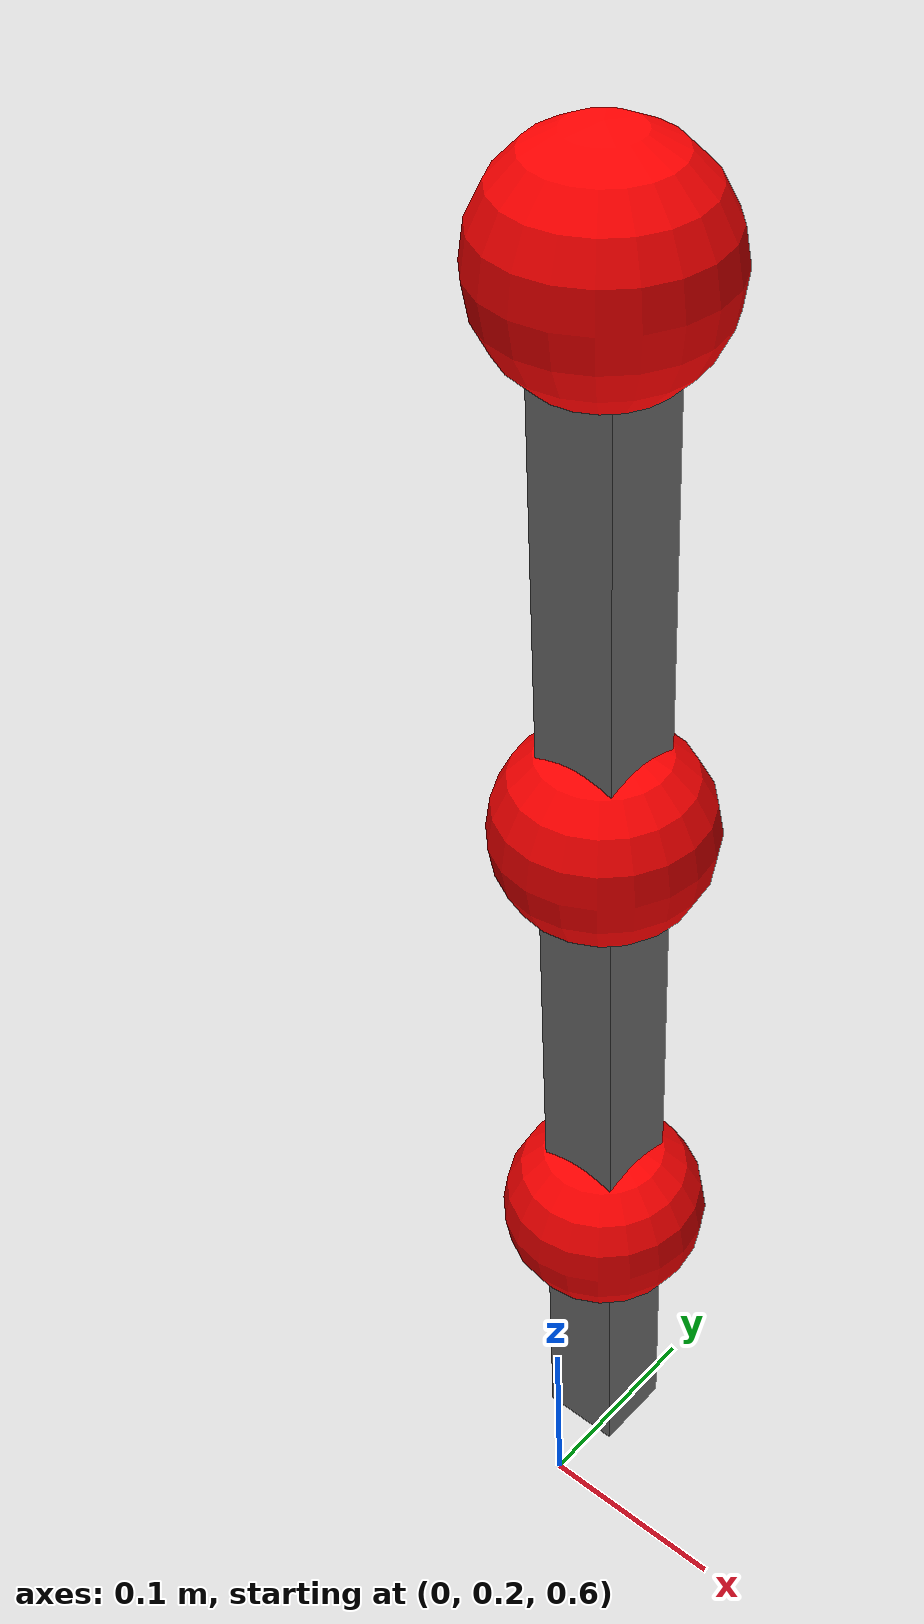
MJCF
<mujoco model="dummy arm scene">

  <include file="setting_option.xml"/>

  <statistic center="0 0 0.2" extent="0.6" />

  <visual>
    <headlight diffuse="0.6 0.6 0.6" ambient="0.3 0.3 0.3" specular="0 0 0" />
    <global azimuth="160" elevation="-20" />
    <rgba haze=".3 .3 .3 1" />
    <quality offsamples="0" />
  </visual>

  <asset>
    <texture type="skybox" builtin="gradient" rgb1="0.6 0.6 0.6" rgb2="0 0 0" width="512"
      height="512" />
    <texture type="2d" name="groundplane" builtin="checker" mark="edge" rgb1="0.2 0.3 0.4"
      rgb2="0.1 0.2 0.3"
      markrgb="0.8 0.8 0.8" width="300" height="300" />
    <material name="groundplane" texture="groundplane" texuniform="true" texrepeat="5 5"
      reflectance="0.2" />
  </asset>

  <worldbody>
    <geom name="floor" size="0 0 0.05" type="plane" material="groundplane" friction="0.5"/>
    <light directional="true" diffuse=".8 .8 .8" specular=".2 .2 .2" pos="0 0 5" dir="0 0 -1" />
    <body pos="0 0 1" euler="0 0 0">
      <include file="parts_mjcf/left_7dof_arm.xml"/>
    </body>
  </worldbody>
  <include file="physics.xml"/>
  <include file="actuator.xml" resolve_relative="root"/>
</mujoco>

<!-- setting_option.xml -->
<mujoco>
    <compiler coordinate="local" angle="radian" meshdir="meshes" strippath="false" />
    <option timestep="0.004" iterations="40" solver="Newton" tolerance="1e-10" />

    <default>
        <joint armature="0.6" frictionloss="0.03" />
    </default>
</mujoco>

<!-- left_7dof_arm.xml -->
<mujoco>
    <body name="left_shoulder_p" pos="0 0.238 0.291" euler="0 0 0">
        <joint pos="0 0 0" name="l_sh_p" type="hinge" axis="0 1 0" limited="true" range="-3.1415 3.1415" damping="7" />
        <inertial mass="6.2809923e-01" pos="7.8120036e-03 -2.0319564e-02  2.8569055e-05" fullinertia="0.0010 0.0013 0.00187 -0.000095 0.000000 0.0" />
        <geom type="sphere" size="0.05 0.05 0.1" contype="0" conaffinity="0" rgba="1 0 0 1"/>
        <body name="left_shoulder_r" pos="0 0 0" euler="0 0 0">
            <joint pos="0 0 0" name="l_sh_r" type="hinge" axis="1 0 0" limited="true" range="-3.1415 3.1415" damping="7" />
            <inertial mass="2.0754202e+00" pos="1.1721786e-04 -2.0673153e-06 -7.6467618e-02" fullinertia="0.0115 0.0117 0.00165 0.000000 -0.000052 -0.0" />
            <geom type="sphere" size="0.05 0.05 0.1" contype="0" conaffinity="0"  rgba="1 0 0 1"/>
            <body name="left_shoulder_y" pos="0 0 -0.1325" euler="0 0 0">
                <joint pos="0 0 0.1325" name="l_sh_y" type="hinge" axis="0 0 1" limited="true" range="-3.1415 3.1415" damping="7" />
                <inertial mass="8.3595948e-01" pos="1.5427073e-04  1.1853367e-03 -2.5928865e-01" fullinertia="0.0012 0.0013 0.00066 0.000000 -0.000001 0.0" />
                <geom type="box" size="0.02 0.02 0.1325" contype="0" conaffinity="0"/>
                <body name="left_el_p" pos="0 0 -0.245" euler="0 0 0">
                    <geom type="box" size="0.02 0.02 0.1225" contype="0" conaffinity="0"/>
                    <site name="l_el_p" size="0.05" pos="0 0 0.1225" rgba="1 0 0 1"/>
                    <inertial mass="9.2390633e-01" pos="-5.4273743e-05  5.2544852e-03 -5.6517244e-02" fullinertia="0.0036 0.0031 0.00101 -0.000003 0.000005 -0.0" />
                    <joint pos="0 0 0.1225" name="l_el_p" type="hinge" axis="0 1 0" limited="true" range="-3.1415 3.1415" damping="7" />
                    <body name="left_wr_y" pos="0 0 -0.1225" euler="0 0 0">
                        <joint pos="0 0 0" name="l_wr_y" type="hinge" axis="0 0 1" limited="true" range="-3.1415 3.1415" damping="7" />
                        <inertial mass="3.2656578e-01" pos="1.9422183e-03  1.5378307e-03 -1.9197123e-01" fullinertia="0.0006 0.0005 0.00030 0.000002 -0.000002 0.0" />
                        <geom type="sphere" size="0.05 0.05 0.1" contype="0" conaffinity="0" rgba="1 0 0 1"/>
                        <body name="left_wr_p" pos="0 0 0" euler="0 0 0">
                            <joint pos="0 0 0" name="l_wr_p" type="hinge" axis="0 1 0" limited="true" range="-3.1415 3.1415" damping="7" />
                            <inertial mass="4.1515816e-01" pos="-1.6621476e-02 -1.9601076e-04  1.4473553e-02" fullinertia="0.0002 0.0004 0.00031 0.000012 0.000009 0.0" />
                            <geom type="sphere" size="0.05 0.05 0.1" contype="0" conaffinity="0" rgba="1 0 0 1"/>
                            <body name="left_wr_r" pos="0 0 0" euler="0 0 0">
                                <joint pos="0 0 0" name="l_wr_r" type="hinge" axis="1 0 0" limited="true" range="-3.1415 3.1415" damping="7" />
                                <inertial mass="1.9200734e-01" pos="-1.0540296e-02  4.6913995e-07 -2.8980827e-02" fullinertia="0.0001 0.0004 0.00031 -0.000000 -0.000018 0.0"/>
                                <geom type="sphere" size="0.05 0.05 0.1" contype="0" conaffinity="0" rgba="1 0 0 1"/>
                                <body name="left_end" pos="0 0 -0.0825" euler="0 0 0">
                                    <geom type="box" size="0.02 0.02 0.0825" mass="0.5" contype="0" conaffinity="0"/>
                                </body>
                            </body>
                        </body>
                    </body>

                </body>

            </body>
        </body>
    </body>
</mujoco>

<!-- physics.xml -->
<mujoco>
    <contact>
        <exclude body1="left_shoulder_p" body2="left_shoulder_r" />
        <exclude body1="left_shoulder_p" body2="left_shoulder_y" />
        <exclude body1="left_shoulder_r" body2="left_shoulder_y" />

        <exclude body1="left_shoulder_p" body2="left_shoulder_r" />
        <exclude body1="left_shoulder_p" body2="left_shoulder_y" />
        <exclude body1="left_shoulder_r" body2="left_shoulder_y" />
        <exclude body1="left_shoulder_y" body2="left_el_p"/>
        <exclude body1="left_el_p" body2="left_wr_y"/>
        <exclude body1="left_el_p" body2="left_wr_p"/>
        <exclude body1="left_el_p" body2="left_wr_r"/>
        <exclude body1="left_wr_y" body2="left_wr_p"/>
        <exclude body1="left_wr_y" body2="left_wr_r"/>
        <exclude body1="left_wr_p" body2="left_wr_r"/>

    </contact>
</mujoco>

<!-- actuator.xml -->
<mujoco>
    <actuator>

        <general name="l_sh_p" ctrlrange="-50 50" joint="l_sh_p"/>
        <general name="l_sh_r" ctrlrange="-50 50" joint="l_sh_r"/>
        <general name="l_sh_y" ctrlrange="-50 50" joint="l_sh_y"/>
        <general name="l_el_p" ctrlrange="-50 50" joint="l_el_p"/>
        <general name="l_wr_y" ctrlrange="-50 50" joint="l_wr_y"/>
        <general name="l_wr_p" ctrlrange="-50 50" joint="l_wr_p"/>
        <general name="l_wr_r" ctrlrange="-50 50" joint="l_wr_r"/>

    </actuator>
</mujoco>
